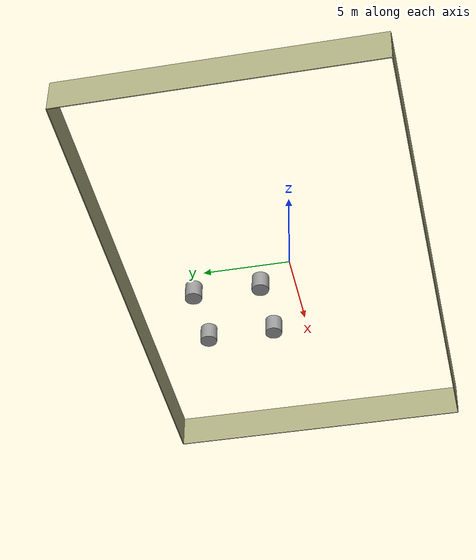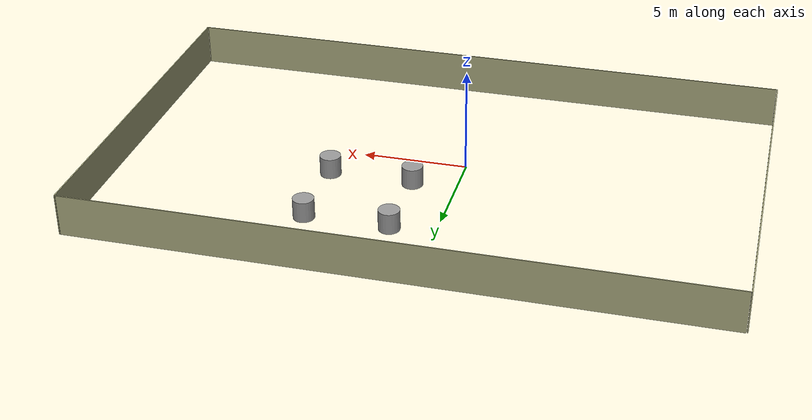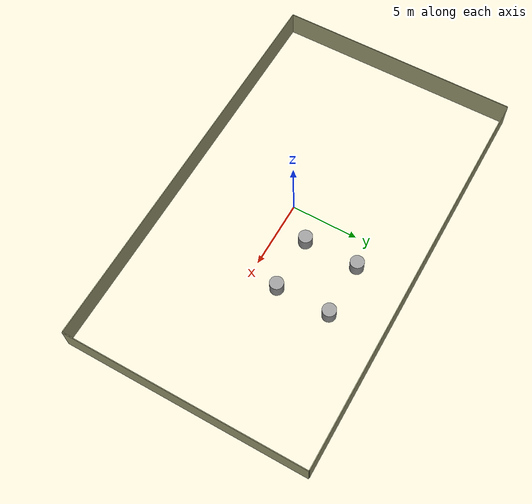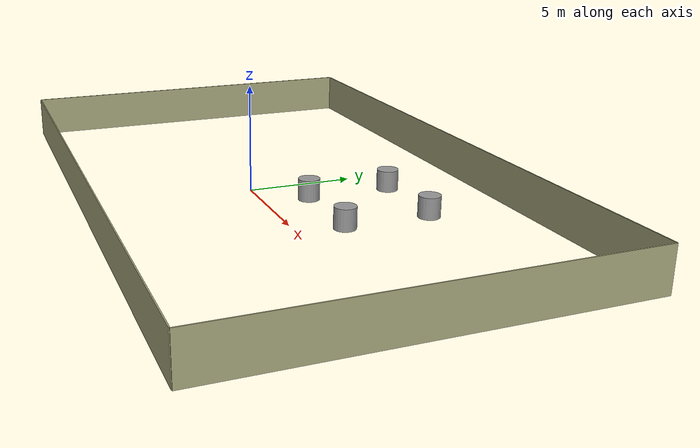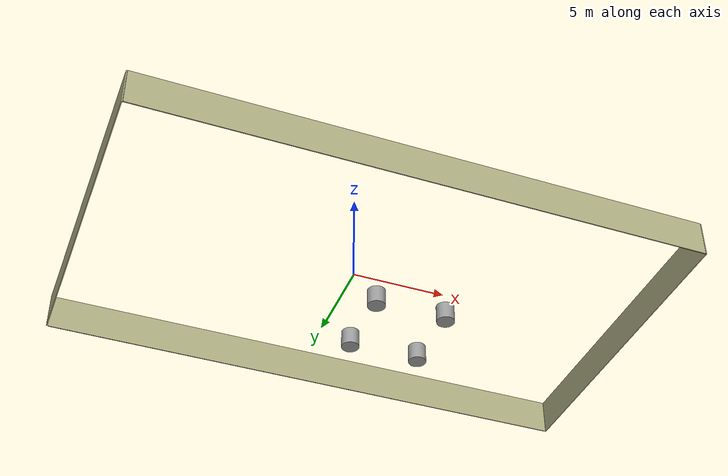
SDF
<?xml version='1.0'?>

<sdf version='1.6'>
  <model name='walls'>
    <pose frame=''>0.070483 0.106017 0 0 -0 0</pose>

    <link name='Wall_01'>
      <collision name='Wall_01_Collision'>
        <geometry>
          <box>
            <size>30 0.05 2.0</size>
          </box>
        </geometry>
        <pose frame=''>1 1 1.0 0 -0 0</pose>
      </collision>
      <visual name='Wall_01_Visual'>
        <pose frame=''>1 1 1.0 0 -0 0</pose>
        <geometry>
          <box>
            <size>30 0.05 2.0</size>
          </box>
        </geometry>
        <material>
          <script>
            <uri>file://media/materials/scripts/gazebo.material</uri>
            <name>Gazebo/Grey</name>
          </script>
          <ambient>0.666667 0.666667 0.498039 1</ambient>
        </material>
      </visual>
      <pose frame=''>0 -9 0 0 -0 0</pose>
    </link>

    <link name='Wall_02'>
      <collision name='Wall_02_Collision'>
        <geometry>
          <box>
            <size>0.05 18 2.0</size>
          </box>
        </geometry>
        <pose frame=''>1 1 1.0 0 -0 0</pose>
      </collision>
      <visual name='Wall_02_Visual'>
        <pose frame=''>1 1 1.0 0 -0 0</pose>
        <geometry>
          <box>
            <size>0.05 18 2.0</size>
          </box>
        </geometry>
        <material>
          <script>
            <uri>file://media/materials/scripts/gazebo.material</uri>
            <name>Gazebo/Grey</name>
          </script>
          <ambient>0.666667 0.666667 0.498039 1</ambient>
        </material>
      </visual>
      <pose frame=''>-15.05 0 0 0 -0 0</pose>
    </link>

    <link name='Wall_03'>
      <collision name='Wall_03_Collision'>
        <geometry>
          <box>
            <size>30 -0.05 2.0</size>
          </box>
        </geometry>
        <pose frame=''>1 1 1.0 0 -0 0</pose>
      </collision>
      <visual name='Wall_03_Visual'>
        <pose frame=''>1 1 1.0 0 -0 0</pose>
        <geometry>
          <box>
            <size>30 -0.05 2.0</size>
          </box>
        </geometry>
        <material>
          <script>
            <uri>file://media/materials/scripts/gazebo.material</uri>
            <name>Gazebo/Grey</name>
          </script>
          <ambient>0.666667 0.666667 0.498039 1</ambient>
        </material>
      </visual>
      <pose frame=''>0 9 0 0 -0 0</pose>
    </link>

    <link name='Wall_04'>
      <collision name='Wall_04_Collision'>
        <geometry>
          <box>
            <size>-0.05 18 2.0</size>
          </box>
        </geometry>
        <pose frame=''>1 1 1.0 0 -0 0</pose>
      </collision>
      <visual name='Wall_04_Visual'>
        <pose frame=''>1 1 1.0 0 -0 0</pose>
        <geometry>
          <box>
            <size>-0.05 18 2.0</size>
          </box>
        </geometry>
        <material>
          <script>
            <uri>file://media/materials/scripts/gazebo.material</uri>
            <name>Gazebo/Grey</name>
          </script>
          <ambient>0.666667 0.666667 0.498039 1</ambient>
        </material>
      </visual>
      <pose frame=''>15.05 0 0 0 -0 0</pose>
    </link>

    <model name='unit_cylinder'>
      <pose>2 2 0.5 0 -0 0</pose>
      <link name='link'>
        <inertial>
          <mass>100</mass>
          <inertia>
            <ixx>0</ixx>
            <ixy>0</ixy>
            <ixz>0</ixz>
            <iyy>0</iyy>
            <iyz>0</iyz>
            <izz>0</izz>
          </inertia>
          <pose>0 0 0 0 -0 0</pose>
        </inertial>
        <collision name='collision'>
          <geometry>
            <cylinder>
              <radius>0.5</radius>
              <length>1</length>
            </cylinder>
          </geometry>
          <max_contacts>10</max_contacts>
          <surface>
            <contact>
              <ode/>
            </contact>
            <bounce/>
            <friction>
              <torsional>
                <ode/>
              </torsional>
              <ode/>
            </friction>
          </surface>
        </collision>
        <visual name='visual'>
          <geometry>
            <cylinder>
              <radius>0.5</radius>
              <length>1</length>
            </cylinder>
          </geometry>
          <material>
            <script>
              <name>Gazebo/Grey</name>
              <uri>file://media/materials/scripts/gazebo.material</uri>
            </script>
          </material>
        </visual>
        <self_collide>0</self_collide>
        <enable_wind>0</enable_wind>
        <kinematic>0</kinematic>
      </link>
    </model>
    <model name='unit_cylinder_0'>
      <pose>6 2 0.5 0 -0 0</pose>
      <link name='link'>
        <inertial>
          <mass>100</mass>
          <inertia>
            <ixx>0</ixx>
            <ixy>0</ixy>
            <ixz>0</ixz>
            <iyy>0</iyy>
            <iyz>0</iyz>
            <izz>0</izz>
          </inertia>
          <pose>0 0 0 0 -0 0</pose>
        </inertial>
        <collision name='collision'>
          <geometry>
            <cylinder>
              <radius>0.5</radius>
              <length>1</length>
            </cylinder>
          </geometry>
          <max_contacts>10</max_contacts>
          <surface>
            <contact>
              <ode/>
            </contact>
            <bounce/>
            <friction>
              <torsional>
                <ode/>
              </torsional>
              <ode/>
            </friction>
          </surface>
        </collision>
        <visual name='visual'>
          <geometry>
            <cylinder>
              <radius>0.5</radius>
              <length>1</length>
            </cylinder>
          </geometry>
          <material>
            <script>
              <name>Gazebo/Grey</name>
              <uri>file://media/materials/scripts/gazebo.material</uri>
            </script>
          </material>
        </visual>
        <self_collide>0</self_collide>
        <enable_wind>0</enable_wind>
        <kinematic>0</kinematic>
      </link>
    </model>
    <model name='unit_cylinder_1'>
      <pose>6 6 0.5 0 -0 0</pose>
      <link name='link'>
        <inertial>
          <mass>100</mass>
          <inertia>
            <ixx>0</ixx>
            <ixy>0</ixy>
            <ixz>0</ixz>
            <iyy>0</iyy>
            <iyz>0</iyz>
            <izz>0</izz>
          </inertia>
          <pose>0 0 0 0 -0 0</pose>
        </inertial>
        <collision name='collision'>
          <geometry>
            <cylinder>
              <radius>0.5</radius>
              <length>1</length>
            </cylinder>
          </geometry>
          <max_contacts>10</max_contacts>
          <surface>
            <contact>
              <ode/>
            </contact>
            <bounce/>
            <friction>
              <torsional>
                <ode/>
              </torsional>
              <ode/>
            </friction>
          </surface>
        </collision>
        <visual name='visual'>
          <geometry>
            <cylinder>
              <radius>0.5</radius>
              <length>1</length>
            </cylinder>
          </geometry>
          <material>
            <script>
              <name>Gazebo/Grey</name>
              <uri>file://media/materials/scripts/gazebo.material</uri>
            </script>
          </material>
        </visual>
        <self_collide>0</self_collide>
        <enable_wind>0</enable_wind>
        <kinematic>0</kinematic>
      </link>
    </model>
    <model name='unit_cylinder_2'>
      <pose>2 6 0.5 0 -0 0</pose>
      <link name='link'>
        <inertial>
          <mass>100</mass>
          <inertia>
            <ixx>0</ixx>
            <ixy>0</ixy>
            <ixz>0</ixz>
            <iyy>0</iyy>
            <iyz>0</iyz>
            <izz>0</izz>
          </inertia>
          <pose>0 0 0 0 -0 0</pose>
        </inertial>
        <collision name='collision'>
          <geometry>
            <cylinder>
              <radius>0.5</radius>
              <length>1</length>
            </cylinder>
          </geometry>
          <max_contacts>10</max_contacts>
          <surface>
            <contact>
              <ode/>
            </contact>
            <bounce/>
            <friction>
              <torsional>
                <ode/>
              </torsional>
              <ode/>
            </friction>
          </surface>
        </collision>
        <visual name='visual'>
          <geometry>
            <cylinder>
              <radius>0.5</radius>
              <length>1</length>
            </cylinder>
          </geometry>
          <material>
            <script>
              <name>Gazebo/Grey</name>
              <uri>file://media/materials/scripts/gazebo.material</uri>
            </script>
          </material>
        </visual>
        <self_collide>0</self_collide>
        <enable_wind>0</enable_wind>
        <kinematic>0</kinematic>
      </link>
    </model>

    <static>1</static>
  </model>
</sdf>
